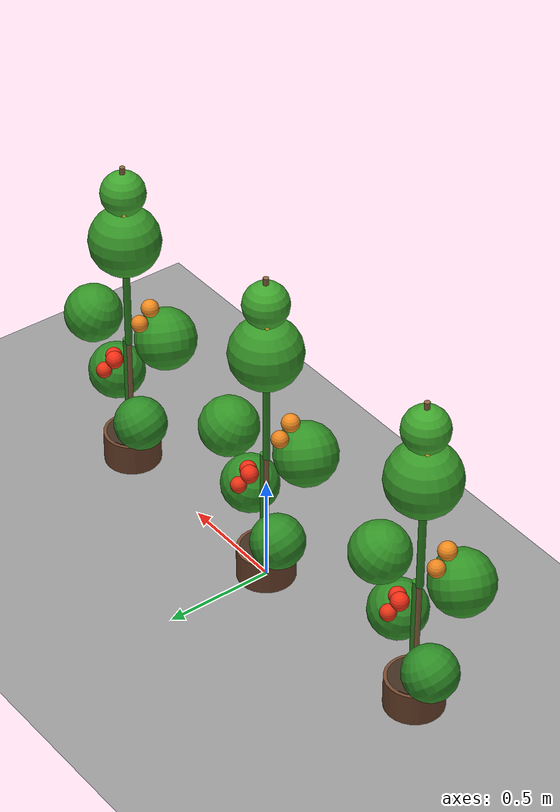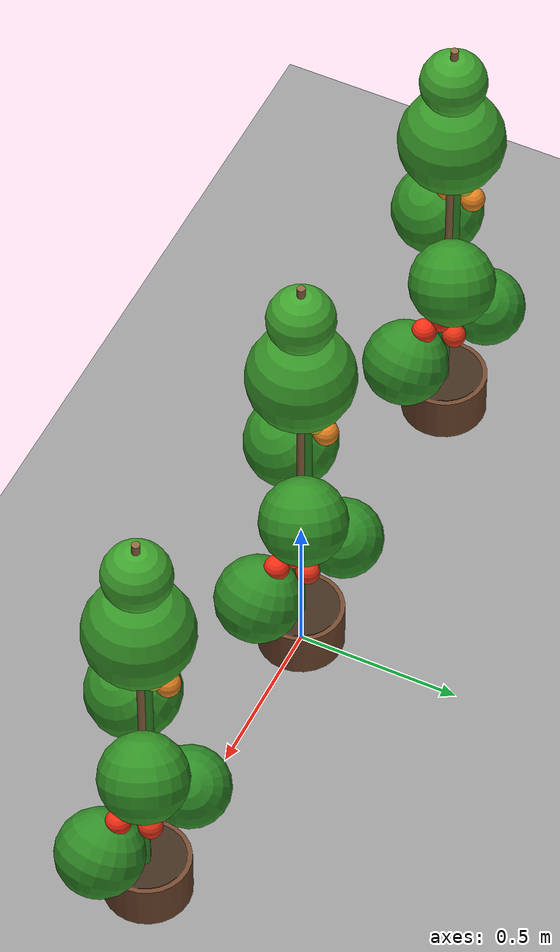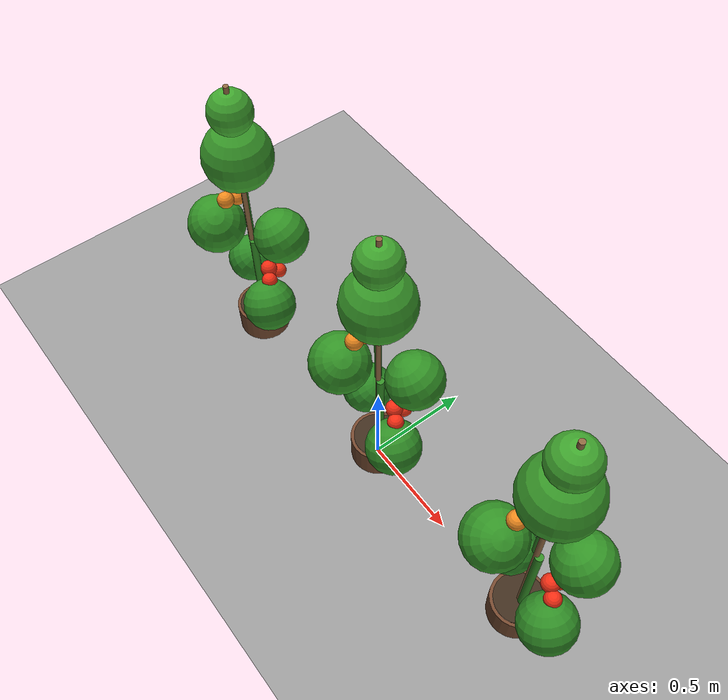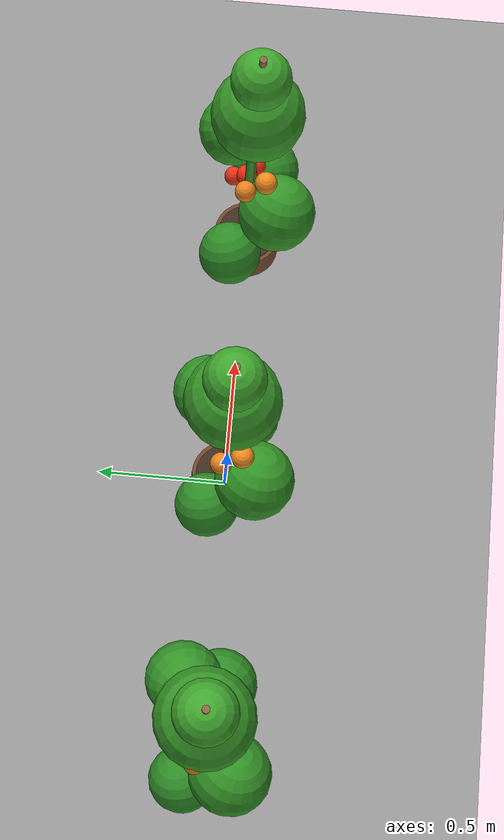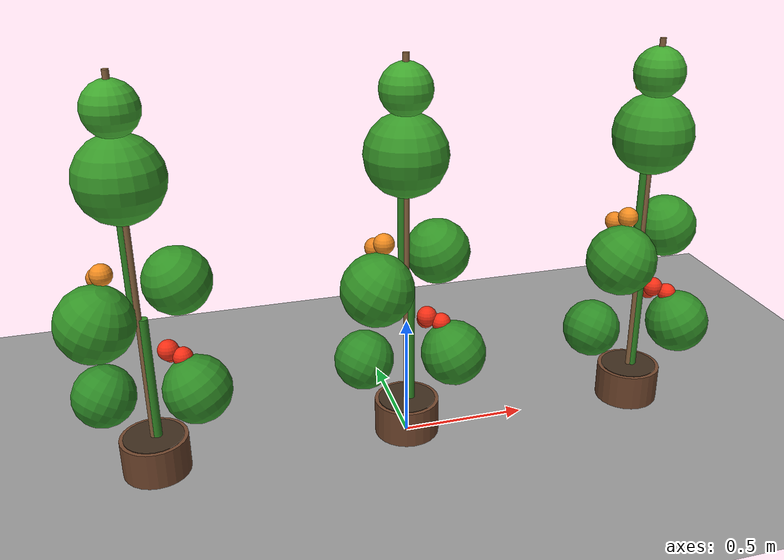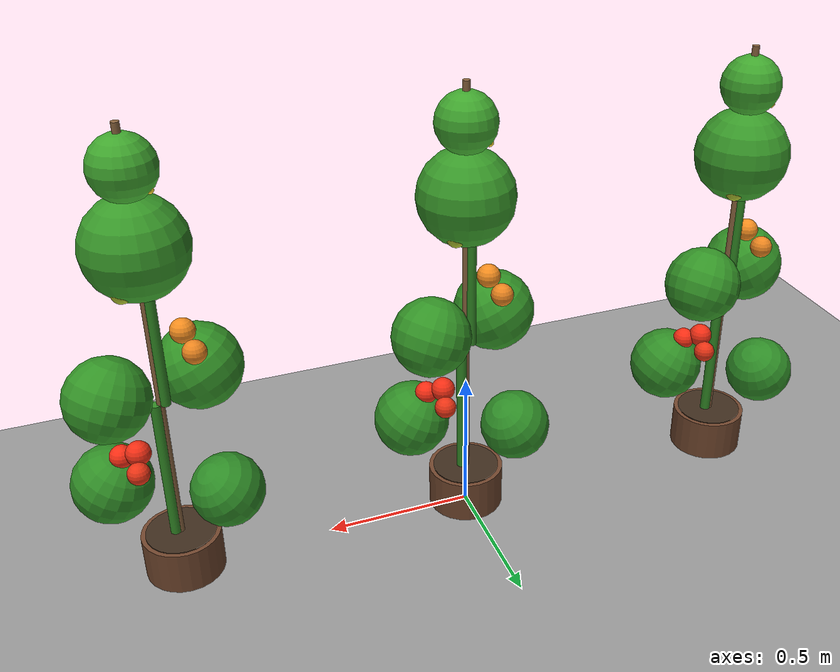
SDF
<?xml version="1.0"?>
<!--
  RAISE 2026 — lite greenhouse world for CPU_ONLY machines.
  Single row of 3 plants. Same coordinates as the full world so launch code
  can target either world without changes.
-->
<sdf version="1.10">
  <world name="greenhouse_2026_lite">

    <!-- GUI config so the 3D window always loads (avoids "Insert plugins to start!"
         from a stale ~/.gz/sim cache). -->
    <gui fullscreen="0">
      <plugin filename="MinimalScene" name="3D View">
        <gz-gui>
          <title>3D View</title>
          <property type="bool" key="showTitleBar">false</property>
          <property type="string" key="state">docked</property>
        </gz-gui>
        <engine>ogre2</engine>
        <scene>scene</scene>
        <ambient_light>0.4 0.4 0.4</ambient_light>
        <background_color>0.8 0.8 0.8</background_color>
        <camera_pose>-6 0 6 0 0.5 0</camera_pose>
        <camera_clip><near>0.25</near><far>25000</far></camera_clip>
      </plugin>
      <plugin filename="GzSceneManager" name="Scene Manager">
        <gz-gui><property key="state" type="string">floating</property><property key="width" type="double">5</property><property key="height" type="double">5</property><property key="showTitleBar" type="bool">false</property></gz-gui>
      </plugin>
      <plugin filename="InteractiveViewControl" name="Interactive view control">
        <gz-gui><property key="state" type="string">floating</property><property key="width" type="double">5</property><property key="height" type="double">5</property><property key="showTitleBar" type="bool">false</property></gz-gui>
      </plugin>
      <plugin filename="CameraTracking" name="Camera Tracking">
        <gz-gui><property key="state" type="string">floating</property><property key="width" type="double">5</property><property key="height" type="double">5</property><property key="showTitleBar" type="bool">false</property></gz-gui>
      </plugin>
      <plugin filename="WorldControl" name="World control">
        <gz-gui>
          <title>World control</title>
          <property type="bool" key="showTitleBar">false</property>
          <property type="bool" key="resizable">false</property>
          <property type="double" key="height">72</property>
          <property type="double" key="width">121</property>
          <property type="string" key="state">floating</property>
          <anchors target="3D View"><line own="left" target="left"/><line own="bottom" target="bottom"/></anchors>
        </gz-gui>
        <play_pause>true</play_pause><step>true</step><start_paused>false</start_paused><use_event>true</use_event>
      </plugin>
      <plugin filename="WorldStats" name="World stats">
        <gz-gui>
          <title>World stats</title>
          <property type="bool" key="showTitleBar">false</property>
          <property type="bool" key="resizable">false</property>
          <property type="double" key="height">110</property>
          <property type="double" key="width">290</property>
          <property type="string" key="state">floating</property>
          <anchors target="3D View"><line own="right" target="right"/><line own="bottom" target="bottom"/></anchors>
        </gz-gui>
        <sim_time>true</sim_time><real_time>true</real_time><real_time_factor>true</real_time_factor><iterations>true</iterations><use_event>true</use_event>
      </plugin>
      <plugin filename="EntityContextMenuPlugin" name="Entity context menu">
        <gz-gui><property key="state" type="string">floating</property><property key="width" type="double">5</property><property key="height" type="double">5</property><property key="showTitleBar" type="bool">false</property></gz-gui>
      </plugin>
    </gui>

    <physics name="1ms" type="ignored">
      <max_step_size>0.001</max_step_size>
      <real_time_factor>1.0</real_time_factor>
    </physics>

    <plugin filename="gz-sim-physics-system" name="gz::sim::systems::Physics"/>
    <plugin filename="gz-sim-user-commands-system" name="gz::sim::systems::UserCommands"/>
    <plugin filename="gz-sim-scene-broadcaster-system" name="gz::sim::systems::SceneBroadcaster"/>
    <plugin filename="gz-sim-sensors-system" name="gz::sim::systems::Sensors">
      <render_engine>ogre</render_engine>
    </plugin>

    <light type="directional" name="sun">
      <pose>0 0 10 0 0 0</pose>
      <diffuse>0.90 0.90 0.85 1</diffuse>
      <direction>-0.3 -0.3 -1</direction>
    </light>

    <!-- Local inline ground plane — no Fuel download. -->
    <model name="ground_plane">
      <static>true</static>
      <link name="link">
        <collision name="collision">
          <geometry><plane><normal>0 0 1</normal><size>50 50</size></plane></geometry>
        </collision>
        <visual name="visual">
          <geometry><plane><normal>0 0 1</normal><size>50 50</size></plane></geometry>
          <material>
            <ambient>0.4 0.4 0.4 1</ambient>
            <diffuse>0.6 0.6 0.6 1</diffuse>
          </material>
        </visual>
      </link>
    </model>

    <include><name>tomato_0</name><pose>-1.0 0.0 0 0 0 0</pose><uri>model://tomato_plant</uri></include>
    <include><name>tomato_1</name><pose> 0.0 0.0 0 0 0 0</pose><uri>model://tomato_plant</uri></include>
    <include><name>tomato_2</name><pose> 1.0 0.0 0 0 0 0</pose><uri>model://tomato_plant</uri></include>

  </world>
</sdf>

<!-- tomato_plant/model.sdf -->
<sdf version="1.10">
  <model name="tomato_plant">
    <static>true</static>

    <!-- ── Clay/plastic pot ────────────────────────────────────────── -->
    <link name="pot">
      <pose>0 0 0.075 0 0 0</pose>
      <visual name="v"><geometry><cylinder><radius>0.13</radius><length>0.15</length></cylinder></geometry>
        <material>
          <ambient>0.30 0.20 0.13 1</ambient>
          <diffuse>0.45 0.28 0.18 1</diffuse>
          <specular>0.10 0.05 0.03 1</specular>
        </material>
      </visual>
      <collision name="c"><geometry><cylinder><radius>0.13</radius><length>0.15</length></cylinder></geometry></collision>
    </link>

    <!-- Soil top in the pot -->
    <link name="pot_soil">
      <pose>0 0 0.148 0 0 0</pose>
      <visual name="v"><geometry><cylinder><radius>0.115</radius><length>0.01</length></cylinder></geometry>
        <material>
          <ambient>0.18 0.13 0.08 1</ambient>
          <diffuse>0.25 0.18 0.12 1</diffuse>
        </material>
      </visual>
    </link>

    <!-- ── Wooden support stake (the cane real tomato vines climb) ── -->
    <link name="stake">
      <pose>0 0 0.85 0 0 0</pose>
      <visual name="v"><geometry><cylinder><radius>0.012</radius><length>1.4</length></cylinder></geometry>
        <material>
          <ambient>0.35 0.25 0.15 1</ambient>
          <diffuse>0.55 0.40 0.25 1</diffuse>
        </material>
      </visual>
      <collision name="c"><geometry><cylinder><radius>0.012</radius><length>1.4</length></cylinder></geometry></collision>
    </link>

    <!-- ── Vine stem segments (slightly offset to suggest climbing) ── -->
    <link name="stem_lower">
      <pose>0.015 0 0.40 0 0 0</pose>
      <visual name="v"><geometry><cylinder><radius>0.018</radius><length>0.50</length></cylinder></geometry>
        <material><ambient>0.14 0.35 0.10 1</ambient><diffuse>0.20 0.55 0.15 1</diffuse></material>
      </visual>
    </link>
    <link name="stem_mid">
      <pose>-0.015 0.010 0.85 0 0 0</pose>
      <visual name="v"><geometry><cylinder><radius>0.016</radius><length>0.40</length></cylinder></geometry>
        <material><ambient>0.14 0.35 0.10 1</ambient><diffuse>0.20 0.55 0.15 1</diffuse></material>
      </visual>
    </link>
    <link name="stem_top">
      <pose>0.012 -0.010 1.20 0 0 0</pose>
      <visual name="v"><geometry><cylinder><radius>0.013</radius><length>0.30</length></cylinder></geometry>
        <material><ambient>0.16 0.40 0.12 1</ambient><diffuse>0.22 0.60 0.16 1</diffuse></material>
      </visual>
    </link>

    <!-- ── Leaf clusters at 4 heights (flattened spheres = ellipsoids) ─ -->
    <link name="leaves_low_l">
      <pose>-0.16 0.06 0.32 0 0.6 0.4</pose>
      <visual name="v"><geometry><sphere><radius>0.12</radius></sphere></geometry>
        <material><ambient>0.12 0.35 0.10 1</ambient><diffuse>0.18 0.55 0.15 1</diffuse></material>
      </visual>
    </link>
    <link name="leaves_low_r">
      <pose>0.18 -0.05 0.36 0 -0.5 -0.3</pose>
      <visual name="v"><geometry><sphere><radius>0.13</radius></sphere></geometry>
        <material><ambient>0.13 0.36 0.10 1</ambient><diffuse>0.19 0.56 0.15 1</diffuse></material>
      </visual>
    </link>
    <link name="leaves_mid_l">
      <pose>-0.14 -0.10 0.70 0 0.5 -0.4</pose>
      <visual name="v"><geometry><sphere><radius>0.14</radius></sphere></geometry>
        <material><ambient>0.13 0.38 0.10 1</ambient><diffuse>0.20 0.58 0.15 1</diffuse></material>
      </visual>
    </link>
    <link name="leaves_mid_r">
      <pose>0.15 0.08 0.75 0 -0.5 0.5</pose>
      <visual name="v"><geometry><sphere><radius>0.13</radius></sphere></geometry>
        <material><ambient>0.13 0.38 0.10 1</ambient><diffuse>0.20 0.58 0.15 1</diffuse></material>
      </visual>
    </link>
    <link name="leaves_high">
      <pose>0.00 0.00 1.18 0 0 0</pose>
      <visual name="v"><geometry><sphere><radius>0.16</radius></sphere></geometry>
        <material><ambient>0.14 0.40 0.11 1</ambient><diffuse>0.22 0.60 0.16 1</diffuse></material>
      </visual>
    </link>
    <link name="leaves_top">
      <pose>0.00 0.00 1.42 0 0 0</pose>
      <visual name="v"><geometry><sphere><radius>0.10</radius></sphere></geometry>
        <material><ambient>0.16 0.45 0.13 1</ambient><diffuse>0.25 0.65 0.18 1</diffuse></material>
      </visual>
    </link>

    <!-- ── Fruit cluster 1: lower (ripe red) ───────────────────────── -->
    <link name="fruit_r1a"><pose> 0.09 0.02 0.50 0 0 0</pose>
      <visual name="v"><geometry><sphere><radius>0.040</radius></sphere></geometry>
        <material><ambient>0.75 0.10 0.05 1</ambient><diffuse>0.95 0.18 0.08 1</diffuse><specular>0.5 0.1 0.1 1</specular></material>
      </visual>
      <collision name="c"><geometry><sphere><radius>0.040</radius></sphere></geometry></collision>
    </link>
    <link name="fruit_r1b"><pose> 0.14 -0.01 0.48 0 0 0</pose>
      <visual name="v"><geometry><sphere><radius>0.038</radius></sphere></geometry>
        <material><ambient>0.78 0.10 0.05 1</ambient><diffuse>0.97 0.18 0.08 1</diffuse><specular>0.5 0.1 0.1 1</specular></material>
      </visual>
      <collision name="c"><geometry><sphere><radius>0.038</radius></sphere></geometry></collision>
    </link>
    <link name="fruit_r1c"><pose> 0.10 0.07 0.46 0 0 0</pose>
      <visual name="v"><geometry><sphere><radius>0.036</radius></sphere></geometry>
        <material><ambient>0.72 0.12 0.05 1</ambient><diffuse>0.92 0.20 0.08 1</diffuse><specular>0.5 0.1 0.1 1</specular></material>
      </visual>
      <collision name="c"><geometry><sphere><radius>0.036</radius></sphere></geometry></collision>
    </link>

    <!-- ── Fruit cluster 2: middle (turning — orange) ──────────────── -->
    <link name="fruit_t1"><pose>-0.10 -0.05 0.86 0 0 0</pose>
      <visual name="v"><geometry><sphere><radius>0.040</radius></sphere></geometry>
        <material><ambient>0.78 0.40 0.08 1</ambient><diffuse>0.95 0.55 0.12 1</diffuse><specular>0.4 0.2 0.1 1</specular></material>
      </visual>
      <collision name="c"><geometry><sphere><radius>0.040</radius></sphere></geometry></collision>
    </link>
    <link name="fruit_t2"><pose>-0.12 0.02 0.82 0 0 0</pose>
      <visual name="v"><geometry><sphere><radius>0.038</radius></sphere></geometry>
        <material><ambient>0.75 0.38 0.08 1</ambient><diffuse>0.92 0.52 0.12 1</diffuse><specular>0.4 0.2 0.1 1</specular></material>
      </visual>
      <collision name="c"><geometry><sphere><radius>0.038</radius></sphere></geometry></collision>
    </link>

    <!-- ── Fruit cluster 3: upper (unripe — green-yellow) ──────────── -->
    <link name="fruit_u1"><pose> 0.09 -0.05 1.12 0 0 0</pose>
      <visual name="v"><geometry><sphere><radius>0.035</radius></sphere></geometry>
        <material><ambient>0.55 0.62 0.12 1</ambient><diffuse>0.72 0.78 0.20 1</diffuse><specular>0.2 0.2 0.1 1</specular></material>
      </visual>
      <collision name="c"><geometry><sphere><radius>0.035</radius></sphere></geometry></collision>
    </link>
    <link name="fruit_u2"><pose> 0.06 0.07 1.08 0 0 0</pose>
      <visual name="v"><geometry><sphere><radius>0.032</radius></sphere></geometry>
        <material><ambient>0.50 0.60 0.10 1</ambient><diffuse>0.68 0.76 0.18 1</diffuse><specular>0.2 0.2 0.1 1</specular></material>
      </visual>
      <collision name="c"><geometry><sphere><radius>0.032</radius></sphere></geometry></collision>
    </link>

    <!-- ── Yellow flowers (very top) — visual cue that the plant is still growing ─ -->
    <link name="flower_1"><pose>-0.06 0.04 1.36 0 0 0</pose>
      <visual name="v"><geometry><sphere><radius>0.012</radius></sphere></geometry>
        <material><ambient>0.92 0.78 0.15 1</ambient><diffuse>1.0 0.88 0.20 1</diffuse></material>
      </visual>
    </link>
    <link name="flower_2"><pose>0.05 -0.05 1.40 0 0 0</pose>
      <visual name="v"><geometry><sphere><radius>0.012</radius></sphere></geometry>
        <material><ambient>0.92 0.78 0.15 1</ambient><diffuse>1.0 0.88 0.20 1</diffuse></material>
      </visual>
    </link>

    <!-- ── Joints anchoring everything to the pot ──────────────────── -->
    <joint name="j_stake"   type="fixed"><parent>pot</parent><child>stake</child></joint>
    <joint name="j_soil"    type="fixed"><parent>pot</parent><child>pot_soil</child></joint>
    <joint name="j_stem_l"  type="fixed"><parent>stake</parent><child>stem_lower</child></joint>
    <joint name="j_stem_m"  type="fixed"><parent>stake</parent><child>stem_mid</child></joint>
    <joint name="j_stem_t"  type="fixed"><parent>stake</parent><child>stem_top</child></joint>
    <joint name="j_ll_l"    type="fixed"><parent>stake</parent><child>leaves_low_l</child></joint>
    <joint name="j_ll_r"    type="fixed"><parent>stake</parent><child>leaves_low_r</child></joint>
    <joint name="j_lm_l"    type="fixed"><parent>stake</parent><child>leaves_mid_l</child></joint>
    <joint name="j_lm_r"    type="fixed"><parent>stake</parent><child>leaves_mid_r</child></joint>
    <joint name="j_lh"      type="fixed"><parent>stake</parent><child>leaves_high</child></joint>
    <joint name="j_lt"      type="fixed"><parent>stake</parent><child>leaves_top</child></joint>
    <joint name="j_r1a"     type="fixed"><parent>stake</parent><child>fruit_r1a</child></joint>
    <joint name="j_r1b"     type="fixed"><parent>stake</parent><child>fruit_r1b</child></joint>
    <joint name="j_r1c"     type="fixed"><parent>stake</parent><child>fruit_r1c</child></joint>
    <joint name="j_t1"      type="fixed"><parent>stake</parent><child>fruit_t1</child></joint>
    <joint name="j_t2"      type="fixed"><parent>stake</parent><child>fruit_t2</child></joint>
    <joint name="j_u1"      type="fixed"><parent>stake</parent><child>fruit_u1</child></joint>
    <joint name="j_u2"      type="fixed"><parent>stake</parent><child>fruit_u2</child></joint>
    <joint name="j_f1"      type="fixed"><parent>stake</parent><child>flower_1</child></joint>
    <joint name="j_f2"      type="fixed"><parent>stake</parent><child>flower_2</child></joint>

  </model>
</sdf>
